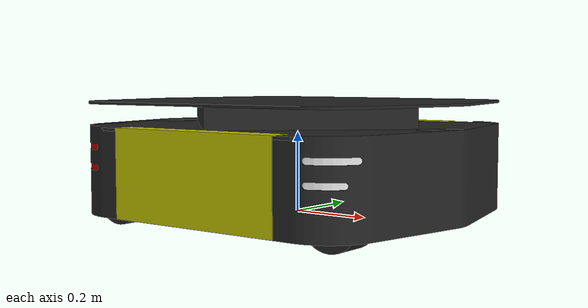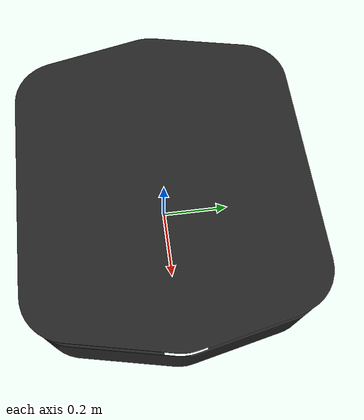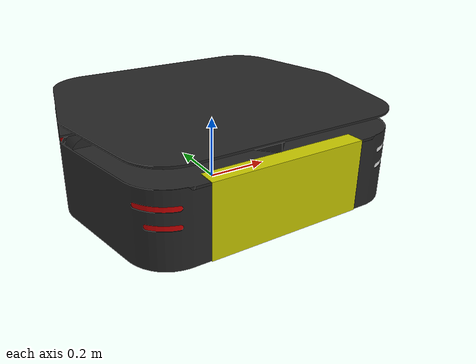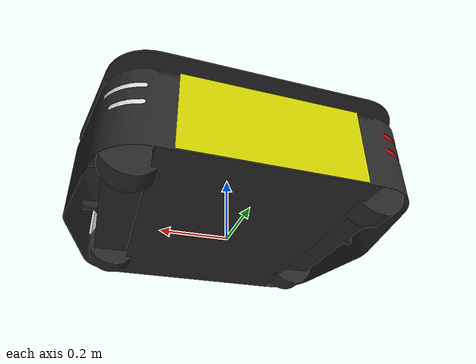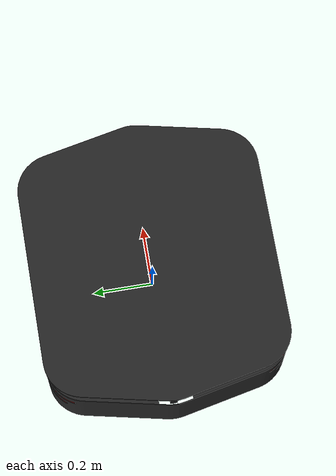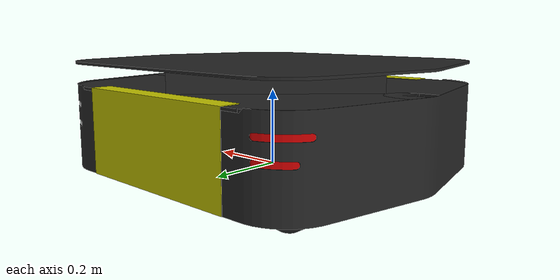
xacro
<?xml version="1.0"?>
<robot name="ridgeback" xmlns:xacro="http://ros.org/wiki/xacro">
  <xacro:property name="PI" value="3.1415926535897931" />

  <xacro:property name="wheel_radius" value="0.0759" />
  <xacro:property name="wheel_width" value="0.0790" />

  <xacro:property name="chassis_length" value="0.960" />
  <xacro:property name="chassis_width" value="0.793" />
  <xacro:property name="chassis_height" value="0.216" />
  <xacro:property name="deck_height" value="0.280" />

  <xacro:property name="axle_offset" value="0.0500" />
  <xacro:property name="rocker_offset" value="0.319" />
  <xacro:property name="rocker_width" value="0.472" />

  <xacro:property name="imu_offset_x" value="0.2085" />
  <xacro:property name="imu_offset_y" value="-0.2902" />
  <xacro:property name="imu_offset_z" value="0.1681" />

  <xacro:property name="dummy_inertia" value="1e-09"/>

  <material name="dark_grey"><color rgba="0.2 0.2 0.2 1.0" /></material>
  <material name="light_grey"><color rgba="0.4 0.4 0.4 1.0" /></material>
  <material name="red"><color rgba="0.8 0.0 0.0 1.0" /></material>
  <material name="white"><color rgba="0.9 0.9 0.9 1.0" /></material>
  <material name="yellow"><color rgba="0.8 0.8 0.0 1.0" /></material>
  <material name="black"><color rgba="0.15 0.15 0.15 1.0" /></material>

  <xacro:macro name="wheel" params="prefix side *joint_pose">
    <link name="${prefix}_${side}_wheel_link">
      <visual>
        <origin xyz="0 0 0" rpy="${PI/2} 0 0"/>
        <geometry>
          <mesh filename="package://ridgeback_description/meshes/wheel.stl"/>
        </geometry>
        <material name="black"><color rgba="0.15 0.15 0.15 1.0" /></material>
      </visual>
      <collision>
        <origin xyz="0 0 0" rpy="${PI/2} 0 0"/>
        <geometry>
          <cylinder radius="${wheel_radius}" length="${wheel_width}"/>
        </geometry>
      </collision>
      <inertial>
        <origin xyz="0 0 0" rpy="0 0 0"/>
        <mass value="2.3"/>
        <inertia
          ixx="3.3212e-3" ixy="0" ixz="0"
          iyy="6.6424e-3" iyz="0"
          izz="3.3212e-3"/>
      </inertial>
    </link>

    <joint name="${prefix}_${side}_wheel" type="fixed">
      <parent link="${prefix}_rocker_link"/>
      <child link="${prefix}_${side}_wheel_link" />
      <xacro:insert_block name="joint_pose" />
    </joint>

  </xacro:macro>

  <xacro:macro name="rocker" params="prefix joint_type location *joint_limits">
    <link name="${prefix}_rocker_link">
      <visual>
        <origin xyz="0 0 0" rpy="${PI/2} 0 ${PI/2}" />
        <geometry>
          <mesh filename="package://ridgeback_description/meshes/rocker.stl"/>
        </geometry>
        <material name="black"><color rgba="0.15 0.15 0.15 1.0" /></material>
      </visual>
      <inertial>
        <origin xyz="0 0 0" rpy="${PI/2} 0 ${PI/2}"/>
        <mass value="10.267"/>
        <inertia
          ixx="0.0288" ixy="2.20484e-6" ixz="-1.3145e-5"
          iyy="0.4324" iyz="1.8944e-3"
          izz="0.4130"/>
      </inertial>
    </link>

    <joint name="${prefix}_rocker" type="${joint_type}">
      <parent link="axle_link"/>
      <child link="${prefix}_rocker_link" />
      <origin xyz="${location*rocker_offset} 0 0" rpy="0 0 0" />
      <axis xyz="1 0 0" />
      <xacro:insert_block name="joint_limits" />
    </joint>

    <xacro:wheel prefix="${prefix}" side="left">
      <origin xyz="0 ${rocker_width/2 + wheel_width/2} 0" rpy="0 0 0" />
    </xacro:wheel>
    <xacro:wheel prefix="${prefix}" side="right">
      <origin xyz="0 ${-(rocker_width/2 + wheel_width/2)} 0" rpy="0 0 0" />
    </xacro:wheel>
  </xacro:macro>

  <xacro:rocker prefix="front" joint_type="fixed" location="1" >
    <limit lower="-0.08726" upper="0.08726" effort="0" velocity="0" />
  </xacro:rocker>

  <xacro:rocker prefix="rear" joint_type="fixed" location="-1" >
    <limit effort="0" velocity="0" />
  </xacro:rocker>

    <link name="virtual0">
    </link>
    <link name="virtual1">
    </link>
    <link name="virtual2">
    </link>

    <joint name="virtual_joint1" type="prismatic">
      <origin rpy="0 0 0" xyz="0 0 0"/>
      <parent link="virtual0"/>
      <child link="virtual1"/>
      <axis xyz="1 0 0"/>
      <limit effort="87" lower="-999999" upper="999999" velocity="4.0"/>
    </joint>
    <joint name="virtual_joint2" type="prismatic">
      <origin rpy="0 0 0" xyz="0 0 0"/>
      <parent link="virtual1"/>
      <child link="virtual2"/>
      <axis xyz="0 1 0"/>
      <limit effort="87" lower="-999999" upper="999999" velocity="4.0"/>
    </joint>
    <joint name="virtual_joint3" type="revolute">
      <origin rpy="0 0 0" xyz="0 0 0"/>
      <parent link="virtual2"/>
      <child link="base_link"/>
      <axis xyz="0 0 1"/>
      <limit effort="87" lower="-999999" upper="999999" velocity="4.0"/>
    </joint>

  <link name="base_link"></link>

  <joint name="base_link_joint" type="fixed">
    <origin xyz="0 0 0" rpy="0 0 0" />
    <parent link="base_link"/>
    <child link="chassis_link" />
  </joint>

  <link name="chassis_link">
    <visual>
      <origin xyz="0 0 0" rpy="0 0 0" />
      <geometry>
        <mesh filename="package://ridgeback_description/meshes/body.stl"/>
      </geometry>
      <material name="black"><color rgba="0.15 0.15 0.15 1.0" /></material>
    </visual>
    <collision>
      <origin xyz="0 0 0"/>
      <geometry>
        <mesh filename="package://ridgeback_description/meshes/body-collision.stl"/>
      </geometry>
    </collision>
    <inertial>
      <origin xyz="0.012 0.002 0.067" rpy="${PI/2} 0 ${PI/2}"/>
      <mass value="165.304"/>
      <inertia
        ixx="4.4744" ixy="0.03098" ixz="0.003647"
        iyy="7.1624" iyz="0.1228"
        izz="4.6155"/>
    </inertial>
  </link>

  <joint name="right_side_cover_link_joint" type="fixed">
    <origin xyz="0 0 0" rpy="0 0 0" />
    <parent link="chassis_link"/>
    <child link="right_side_cover_link" />
  </joint>
  <joint name="left_side_cover_link_joint" type="fixed">
    <origin xyz="0 0 0" rpy="0 0 0" />
    <parent link="chassis_link"/>
    <child link="left_side_cover_link" />
  </joint>

  <link name="left_side_cover_link">
    <visual>
      <origin xyz="0 0 0" rpy="0 0 ${PI}" />
      <geometry>
        <mesh filename="package://ridgeback_description/meshes/side-cover.stl"/>
      </geometry>
      <material name="yellow"><color rgba="0.8 0.8 0.0 1.0" /></material>
    </visual>
  </link>
  <link name="right_side_cover_link">
    <visual>
      <origin xyz="0 0 0" rpy="0 0 0" />
      <geometry>
        <mesh filename="package://ridgeback_description/meshes/side-cover.stl"/>
      </geometry>
      <material name="yellow"><color rgba="0.8 0.8 0.0 1.0" /></material>
    </visual>
  </link>

  <joint name="front_cover_link_joint" type="fixed">
    <origin xyz="0 0 0" rpy="0 0 0" />
    <parent link="chassis_link"/>
    <child link="front_cover_link" />
  </joint>

  <link name="front_cover_link">
    <visual>
      <origin xyz="0 0 0" rpy="0 0 0" />
      <geometry>
        <mesh filename="package://ridgeback_description/meshes/end-cover.stl" />
      </geometry>
      <material name="black"><color rgba="0.15 0.15 0.15 1.0" /></material>
    </visual>
  </link>

  <joint name="rear_cover_link_joint" type="fixed">
    <origin xyz="0 0 0" rpy="0 0 0" />
    <parent link="chassis_link"/>
    <child link="rear_cover_link" />
  </joint>

  <link name="rear_cover_link">
    <visual>
      <origin xyz="0 0 0" rpy="0 0 ${PI}" />
      <geometry>
        <mesh filename="package://ridgeback_description/meshes/end-cover.stl" />
      </geometry>
      <material name="black"><color rgba="0.15 0.15 0.15 1.0" /></material>
    </visual>
  </link>

  <joint name="front_lights_link_joint" type="fixed">
    <origin xyz="0 0 0" rpy="0 0 0" />
    <parent link="chassis_link"/>
    <child link="front_lights_link" />
  </joint>
  <joint name="rear_lights_link_joint" type="fixed">
    <origin xyz="0 0 0" rpy="0 0 0" />
    <parent link="chassis_link"/>
    <child link="rear_lights_link" />
  </joint>

  <link name="front_lights_link">
    <visual>
      <origin xyz="0 0 0" rpy="0 0 0" />
      <geometry>
        <mesh filename="package://ridgeback_description/meshes/lights.stl" />
      </geometry>
      <material name="white"><color rgba="0.9 0.9 0.9 1.0" /></material>
    </visual>
  </link>
  <link name="rear_lights_link">
    <visual>
      <origin xyz="0 0 0" rpy="0 0 ${PI}" />
      <geometry>
        <mesh filename="package://ridgeback_description/meshes/lights.stl" />
      </geometry>
      <material name="red"><color rgba="0.8 0.0 0.0 1.0" /></material>
    </visual>
  </link>

  <joint name="top_link_joint" type="fixed">
    <origin xyz="0 0 0" rpy="0 0 0" />
    <parent link="chassis_link"/>
    <child link="top_link" />
  </joint>

  <link name="top_link">
    <visual>
      <origin xyz="0 0 0" rpy="0 0 0" />
      <geometry>
        <mesh filename="package://ridgeback_description/meshes/top.stl" />
      </geometry>
      <material name="black"><color rgba="0.15 0.15 0.15 1.0" /></material>
    </visual>
    <collision>
      <origin xyz="0 0 0" rpy="0 0 0" />
      <geometry>
        <mesh filename="package://ridgeback_description/meshes/top.stl"/>
      </geometry>
    </collision>
  </link>

  <joint name="axle_joint" type="fixed">
    <origin xyz="0 0 ${axle_offset}" rpy="0 0 0" />
    <parent link="chassis_link"/>
    <child link="axle_link" />
  </joint>

  <link name="axle_link">
    <visual>
      <origin xyz="0 0 0" rpy="0 ${PI/2} 0" />
      <geometry>
        <mesh filename="package://ridgeback_description/meshes/axle.stl" />
      </geometry>
      <material name="black"><color rgba="0.15 0.15 0.15 1.0" /></material>
    </visual>
  </link>

  <!-- Bring in simulation data for Gazebo. -->

  <!-- Optional standard accessories, including their simulation data. The rendering
       of these into the final description is controlled by optenv variables, which
       default each one to off.-->

  <!-- Optional custom includes. -->
</robot>
